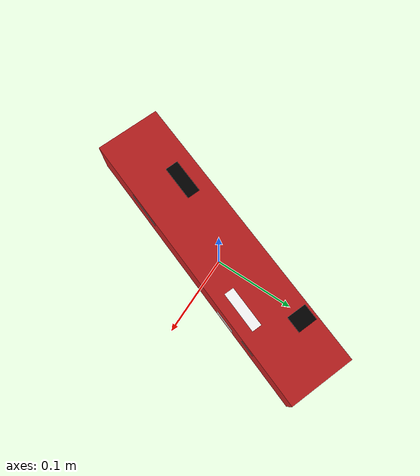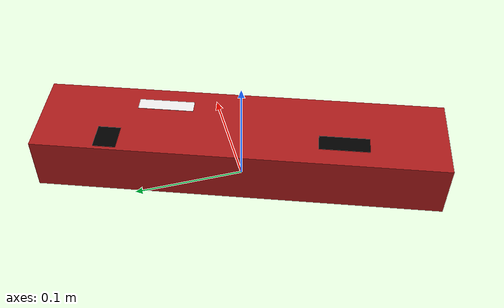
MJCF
<mujoco model="sim_object_box_heavy_end">

  <!-- Thin rectangular object whose ballast is concentrated near its +X end.
       Textures and per-face visual shells are commented out in favor of a
       semi-reflective red shell material. -->
  <asset>
    <material name="heavy_end_ballast" rgba="0.18 0.18 0.22 1"/>

    <texture name="tex_red_grid" type="2d" builtin="checker"
             rgb1="0.85 0.15 0.15" rgb2="0.60 0.08 0.08"
             width="256" height="256"/>
    <material name="red_shiny" texture="tex_red_grid"
              texrepeat="2 2" texuniform="true"
              specular="1.0" shininess="0.6"/>

  </asset>

  <worldbody>

    <body name="object" pos="0 0 0.035" quat="0.819152 0 0 0.573576">
      <freejoint name="object_joint"/>

      <!-- Semi-reflective red shell geom referencing the red_shiny material -->
      <geom name="object_shell" type="box" size="0.18 0.04 0.025"
            material="red_shiny" mass="0.2"
            friction="1.0 0.005 0.0001" solref="0.004 1"/>

      <!-- Front face feature marks -->
      <geom name="front_mark_1" type="box"
            pos="-0.090 -0.0401 0.0125"
            size="0.022 0.0001 0.004"
            rgba="0 0 0 1"
            mass="0"
            contype="0"
            conaffinity="0"/>

      <geom name="front_mark_2" type="box"
            pos="0.065 -0.0401 -0.012"
            size="0.014 0.0001 0.006"
            rgba="1 1 1 1"
            mass="0"
            contype="0"
            conaffinity="0"/>

      <geom name="front_mark_3" type="box"
            pos="0.105 -0.0401 0.0125"
            size="0.010 0.0001 0.003"
            rgba="0 0 0 1"
            mass="0"
            contype="0"
            conaffinity="0"/>

      <!-- Right face feature marks -->
      <geom name="right_mark_1" type="box"
            pos="0.1801 -0.016 0.0125"
            size="0.0001 0.012 0.004"
            rgba="1 1 1 1"
            mass="0"
            contype="0"
            conaffinity="0"/>

      <geom name="right_mark_2" type="box"
            pos="0.1801 0.014 -0.012"
            size="0.0001 0.008 0.006"
            rgba="0 0 0 1"
            mass="0"
            contype="0"
            conaffinity="0"/>

      <geom name="right_mark_3" type="box"
            pos="0.1801 0.028 0.0125"
            size="0.0001 0.006 0.003"
            rgba="1 1 1 1"
            mass="0"
            contype="0"
            conaffinity="0"/>

      <!-- Top face feature marks -->
      <geom name="top_mark_1" type="box"
            pos="-0.090 0.015 0.0251"
            size="0.022 0.008 0.0001"
            rgba="0 0 0 1"
            mass="0"
            contype="0"
            conaffinity="0"/>

      <geom name="top_mark_2" type="box"
            pos="0.070 -0.020 0.0251"
            size="0.025 0.006 0.0001"
            rgba="1 1 1 1"
            mass="0"
            contype="0"
            conaffinity="0"/>

      <geom name="top_mark_3" type="box"
            pos="0.115 0.025 0.0251"
            size="0.010 0.012 0.0001"
            rgba="0 0 0 1"
            mass="0"
            contype="0"
            conaffinity="0"/>

      <!-- Most of the mass is concentrated at the right-hand end. -->
      <geom name="object_ballast" type="box" pos="0.11 0 0"
            size="0.055 0.03 0.018" material="heavy_end_ballast"
            mass="1.8" contype="0" conaffinity="0"/>

    </body>
  </worldbody>

</mujoco>
